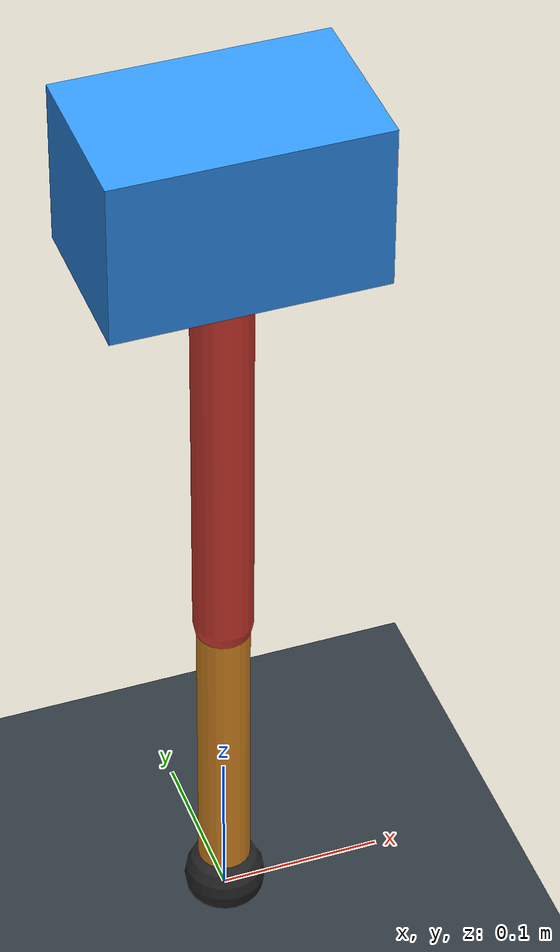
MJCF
<mujoco model="single_axis_two_bar">
  <compiler angle="radian" inertiafromgeom="true"/>
  <option timestep="0.001" integrator="implicitfast" gravity="0 0 -9.81"/>
  <default>
    <joint damping="0.08"/>
    <geom friction="1.2 0.01 0.0001" condim="3"/>
  </default>
  <worldbody>
    <geom name="floor" type="plane" size="5 5 0.1" rgba="0.18 0.22 0.25 1"/>
    <body name="carriage" pos="0 0 0.5343956001430029">
      <joint name="pole_slide" type="slide" axis="0 0 1"/>
      <geom name="payload" type="box" size="0.08 0.05 0.05" mass="2.3088028808858407" rgba="0.2 0.6 1 1"/>
      <body name="thigh" pos="0 0 0">
        <joint name="hip" type="hinge" axis="0 1 0"/>
        <geom name="thigh_link" type="capsule" fromto="0 0 0 0 0 -0.3140698021662851" size="0.018" mass="0.2237788841097602" rgba="0.9 0.25 0.2 1"/>
        <body name="shank" pos="0 0 -0.3140698021662851">
          <joint name="knee" type="hinge" axis="0 1 0"/>
          <geom name="shank_link" type="capsule" fromto="0 0 0 0 0 -0.2110803010739241" size="0.016" mass="0.1503975036952648" rgba="0.95 0.6 0.15 1"/>
          <geom name="foot" type="sphere" pos="0 0 -0.2110803010739241" size="0.025" mass="0.03" rgba="0.15 0.15 0.15 1"/>
          <site name="toe" pos="0 0 -0.2110803010739241" size="0.008"/>
        </body>
      </body>
    </body>
  </worldbody>
  <actuator>
    <motor name="hip_motor" joint="hip" ctrlrange="-35.008601823630414 35.008601823630414"/>
    <motor name="knee_motor" joint="knee" ctrlrange="-34.16137256947788 34.16137256947788"/>
  </actuator>
</mujoco>
